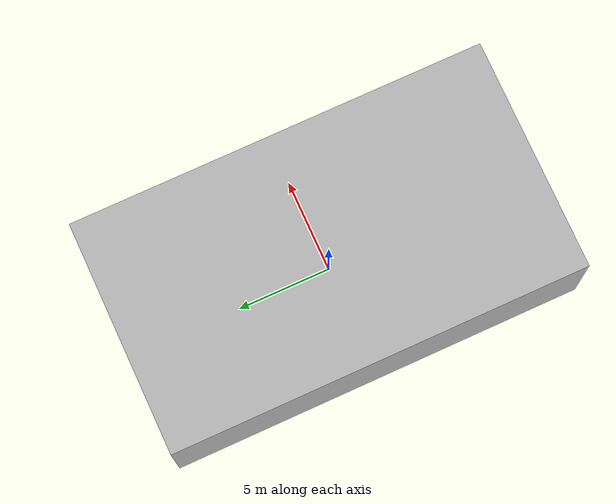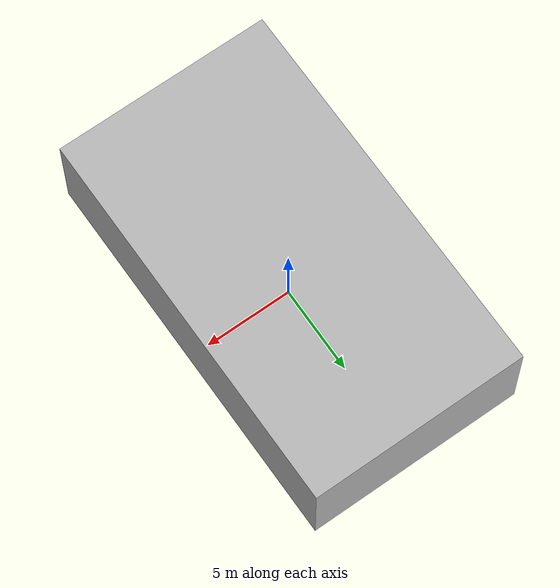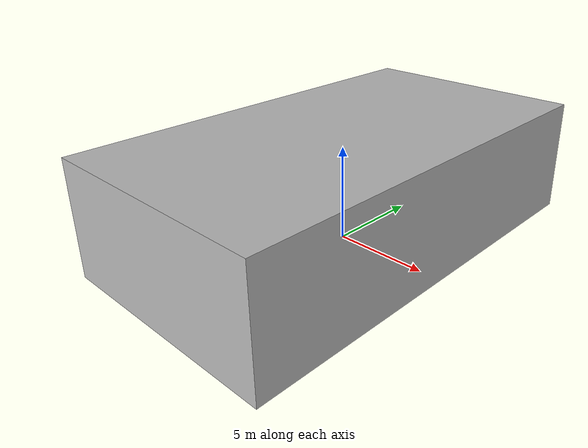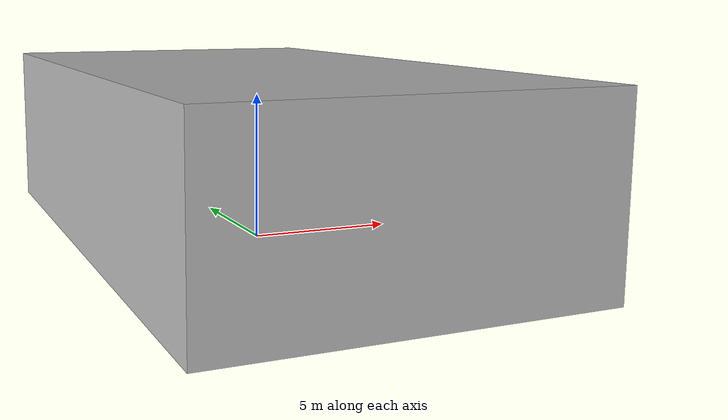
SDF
<?xml version="1.0" ?>
<sdf version="1.7">
  <model name="building_0041_assumed_a_campo_de_jogos">
    <static>true</static>
    <link name="building_link">
      <visual name="building_visual">
        <geometry>
          <mesh>
            <uri>model://building_0041_assumed_a_campo_de_jogos/meshes/construction_0041_assumed_A_Campo_de_jogos_h6m.obj</uri>
          </mesh>
        </geometry>
      </visual>
    <collision name="building_collision">
      <geometry>
        <mesh>
          <uri>model://building_0041_assumed_a_campo_de_jogos/meshes/construction_0041_assumed_A_Campo_de_jogos_h6m.obj</uri>
        </mesh>
      </geometry>
    </collision>
    </link>
  </model>
</sdf>
